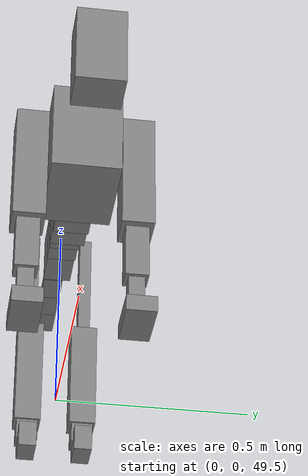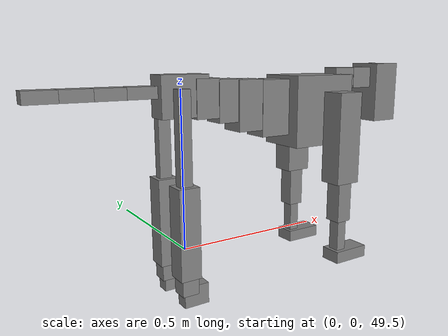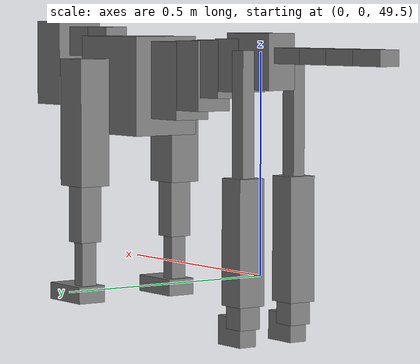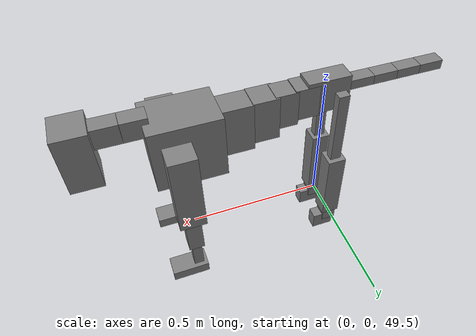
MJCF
<mujoco model="dog">

    <default>
        <joint armature="0.02" stiffness="1" damping="0.2" limited="true"/>
        <geom condim="3" friction="1 0.05 0.05" margin="0.01"/>
        <motor ctrllimited="true" ctrlrange="-1.0 1.0" forcelimited="true" gear="50"/>
    </default>

    <compiler inertiafromgeom="true" angle="radian"/>

    <option timestep="0.016" iterations="50" tolerance="1e-10" solver="Newton" jacobian="dense" cone="pyramidal"/>

    <size nconmax="20000" njmax="60000" nstack="5000000"/>
    <visual>
        <map force="0.1" zfar="30"/>
        <rgba haze="0.15 0.25 0.35 1"/>
        <quality shadowsize="2048"/>
        <global offwidth="800" offheight="800"/>
    </visual>

    <asset>
        <texture type="skybox" builtin="gradient" rgb1="0.3 0.5 0.7" rgb2="0 0 0" width="512" height="512"/>
        <texture name="texplane" type="2d" builtin="checker" rgb1=".2 .3 .4" rgb2=".1 0.15 0.2" width="512" height="512"
                 mark="cross" markrgb=".8 .8 .8"/>
        <texture name="texgeom" type="cube" builtin="flat" mark="cross" width="127" height="1278" rgb1="0.8 0.6 0.4"
                 rgb2="0.8 0.6 0.4" markrgb="1 1 1" random="0.01"/>

        <material name="matplane" reflectance="0.3" texture="texplane" texrepeat="1 1" texuniform="true"/>
        <material name="matgeom" texture="texgeom" texuniform="true" rgba="0.8 0.6 .4 1"/>
    </asset>

    <worldbody>
        <geom name="floor" pos="0 0 0" size="0 0 .25" type="plane" material="matplane" condim="3"/>

        <light directional="false" diffuse=".2 .2 .2" specular="0 0 0" pos="0 0 5" dir="0 0 -1" castshadow="false"/>
        <light mode="targetbodycom" target="torso" directional="false" diffuse=".8 .8 .8" specular="0.3 0.3 0.3"
               pos="0 0 4.0" dir="0 0 -1"/>

        <body name="root" pos="0 0 50">
            <freejoint name="root_1"/>
            <geom type="box" pos="0 0 -0.02" size="0.0774  0.0358  0.063" density="2030"/>

            <body name="spine1" pos="0.054 0 0">
                <joint name="spine1_y" axis="0 1 0" range="0 0.7" limited="true"/>
                <geom type="box" pos="0.02375 0 -0.03" size="0.04375  0.0375  0.05985" density="2030"/>

                <body name="spine2" pos="0.0612 0 0">
                    <joint name="spine2_y" axis="0 1 0" range="-0.15 0.15" limited="true"/>
                    <geom type="box" pos="0.03555  0  -0.04" size="0.04055  0.039  0.06615" density="2030"/>

                    <body name="spine3" pos="0.0730 0 0">
                        <joint name="spine3_y" axis="0 1 0" range="-0.15 0.15" limited="true"/>
                        <geom type="box" pos="0.03555  0  -0.057" size="0.04555  0.0445  0.081" density="2030"/>

                        <body name="spine4" pos="0.0780 0 0">
                            <joint name="spine4_y" axis="0 1 0" range="-0.15 0.15" limited="true"/>
                            <geom type="box" pos="0.05265  0  -0.07" size="0.05265  0.045  0.09135" density="2030"/>

                            <body name="torso" pos="0.1082 0 0">
                                <joint name="torso_y" axis="0 1 0" range="-0.15 0.15" limited="true"/>
                                <geom type="box" pos="0.11925  0  -0.085" size="0.11925  0.085  0.11745"
                                      density="2030"/>

                                <body name="neck1" pos="0.2160  0   0.0180">
                                    <joint name="neck1_y" axis="0 1 0" range="-1.2  -1" limited="true"/>
                                    <geom type="box" pos="0.0423  0  0" size="0.0423  0.03  0.036" density="2325"/>

                                    <body name="neck2" pos="0.0853  0  0">
                                        <joint name="neck2_y" axis="0 1 0" range="0.1  0" limited="true"/>
                                        <geom type="box" pos="0.0423  0  0" size="0.0423  0.03  0.036" density="2325"/>

                                        <body name="head" pos="0.0853  0  0">
                                            <joint name="head_y" axis="0 1 0" range="-0.3  -0.2" limited="true"/>
                                            <geom type="box" pos="0.0531  0  -0.055" size="0.0531  0.06  0.1044"
                                                  density="4030"/>

                                        </body>
                                    </body>
                                </body>

                                <body name="front_shoulder" pos="0.156  0   -0.0480">
                                    <joint name="front_shoulder_y" axis="0 1 0" range="-1 1.5" limited="true"/>
                                    <geom type="box" pos="0 0.13 -0.1258" size="0.0463  0.0396  0.1524" density="1158"/>
                                    <geom type="box" pos="0 -0.13 -0.1258" size="0.0463  0.0396  0.1524"
                                          density="1158"/>

                                    <body name="front_elbow" pos="0  0  -0.2515">
                                        <joint name="front_elbow_y" axis="0 1 0" range="-2 0" limited="true"/>
                                        <geom type="box" pos="0 0.13 -0.0813" size="0.0276  0.0283  0.0813"
                                              density="1081"/>
                                        <geom type="box" pos="0 -0.13 -0.0813" size="0.0276  0.0283  0.0813"
                                              density="1081"/>

                                        <body name="front_wrist" pos="0  0  -0.1626">
                                            <joint name="front_wrist_y" axis="0 1 0" range="-0.2 0" limited="true"/>
                                            <geom type="box" pos="0 0.13 -0.0602" size="0.0178  0.0198  0.0733"
                                                  density="1664"/>
                                            <geom type="box" pos="0 -0.13 -0.0602" size="0.0178  0.0198  0.0733"
                                                  density="1664"/>

                                            <body name="front_finger_end" pos="0  0  -0.1203">
                                                <joint name="front_finger_y" axis="0 1 0" range="-0.4 1"
                                                       limited="true"/>
                                                <geom type="box" pos="0.0361  0.13  -0.0053"
                                                      size="0.0663  0.0361  0.0203" density="1515"/>
                                                <geom type="box" pos="0.0361  -0.13  -0.0053"
                                                      size="0.0663  0.0361  0.0203" density="1515"/>

                                            </body>

                                        </body>
                                    </body>
                                </body>

                            </body>
                        </body>
                    </body>
                </body>
            </body>

            <body name="back_hip" pos="-0.03 0 -0.018">
                <joint name="back_hip_y" axis="0 1 0" range="-1.5 0.3" limited="true"/>
                <geom type="box" pos="0 0.07 -0.1367" size="0.0197  0.0154  0.1595" density="1154"/>
                <geom type="box" pos="0 -0.07 -0.1367" size="0.0197  0.0154  0.1595" density="1154"/>

                <body name="back_knee" pos="0  0  -0.2734">
                    <joint name="back_knee_y" axis="0 1 0" range="0 2.8" limited="true"/>
                    <geom type="box" pos="0 0.07 -0.1260" size="0.0336  0.0332  0.1415" density="1227"/>
                    <geom type="box" pos="0 -0.07 -0.1260" size="0.0336  0.0332  0.1415" density="1227"/>

                    <body name="back_ankle" pos="0  0  -0.2519">
                        <joint name="back_ankle_y" axis="0 1 0" range="-2.2 0" limited="true"/>
                        <geom type="box" pos="0 0.07 -0.0279" size="0.0267  0.0267  0.0392" density="1284"/>
                        <geom type="box" pos="0 -0.07 -0.0279" size="0.0267  0.0267  0.0392" density="1284"/>

                        <body name="back_toe_end" pos="0  0  -0.0558">
                            <joint name="back_toe_y" axis="0 1 0" range="-0.4 1" limited="true"/>
                            <geom type="box" pos="0.0221  0.07  -0.0180" size="0.0405  0.0221  0.0330" density="1515"/>
                            <geom type="box" pos="0.0221  -0.07  -0.0180" size="0.0405  0.0221  0.0330" density="1515"/>

                        </body>
                    </body>
                </body>
            </body>

            <body name="tail1" pos="-0.074 0 -0.006">
                <joint name="tail1_y" axis="0 1 0" range="-0.2 0.2" limited="true"/>
                <geom type="box" pos="-0.0536  0  0" size="0.045  0.025  0.0175" density="1587"/>

                <body name="tail2" pos="-0.09 0 0">
                    <joint name="tail2_y" axis="0 1 0" range="-0.2 0.2" limited="true"/>
                    <geom type="box" pos="-0.0536  0  0" size="0.045  0.025  0.0175" density="1587"/>

                    <body name="tail3" pos="-0.09 0 0">
                        <joint name="tail3_y" axis="0 1 0" range="-0.2 0.2" limited="true"/>
                        <geom type="box" pos="-0.0536  0  0" size="0.045  0.025  0.0175" density="1587"/>

                        <body name="tail4" pos="-0.09 0 0">
                            <joint name="tail4_y" axis="0 1 0" range="-0.2 0.2" limited="true"/>
                            <geom type="box" pos="-0.0536  0  0" size="0.045  0.025  0.0175" density="1587"/>

                        </body>
                    </body>
                </body>
            </body>
        </body>
    </worldbody>

    <actuator>
        <motor joint="spine1_y" forcerange="-150 150     "/>
        <motor joint="spine2_y" forcerange="-150 150     "/>
        <motor joint="spine3_y" forcerange="-150 150     "/>
        <motor joint="spine4_y" forcerange="-150 150     "/>
        <motor joint="torso_y" forcerange="-150 150     "/>
        <motor joint="neck1_y" forcerange="-100 100       "/>
        <motor joint="neck2_y" forcerange="-100 100       "/>
        <motor joint="head_y" forcerange="-150 150       "/>
        <motor joint="front_shoulder_y" forcerange="-184.00 179.77"/>
        <motor joint="front_elbow_y" forcerange="-199.49 105.96"/>
        <motor joint="front_wrist_y" forcerange="-92.39 66.16"/>
        <motor joint="front_finger_y" forcerange="-55.18 97.59"/>
        <motor joint="back_hip_y" forcerange="-204.92 200.71"/>
        <motor joint="back_knee_y" forcerange="-392.81 289.45"/>
        <motor joint="back_angle_y" forcerange="-230.12 96.67"/>
        <motor joint="back_toe_y" forcerange="-73.57 23.36"/>
        <motor joint="tail1_y" forcerange="-50 50     "/>
        <motor joint="tail2_y" forcerange="-50 50     "/>
        <motor joint="tail3_y" forcerange="-50 50     "/>
        <motor joint="tail4_y" forcerange="-50 50     "/>
    </actuator>
</mujoco>
